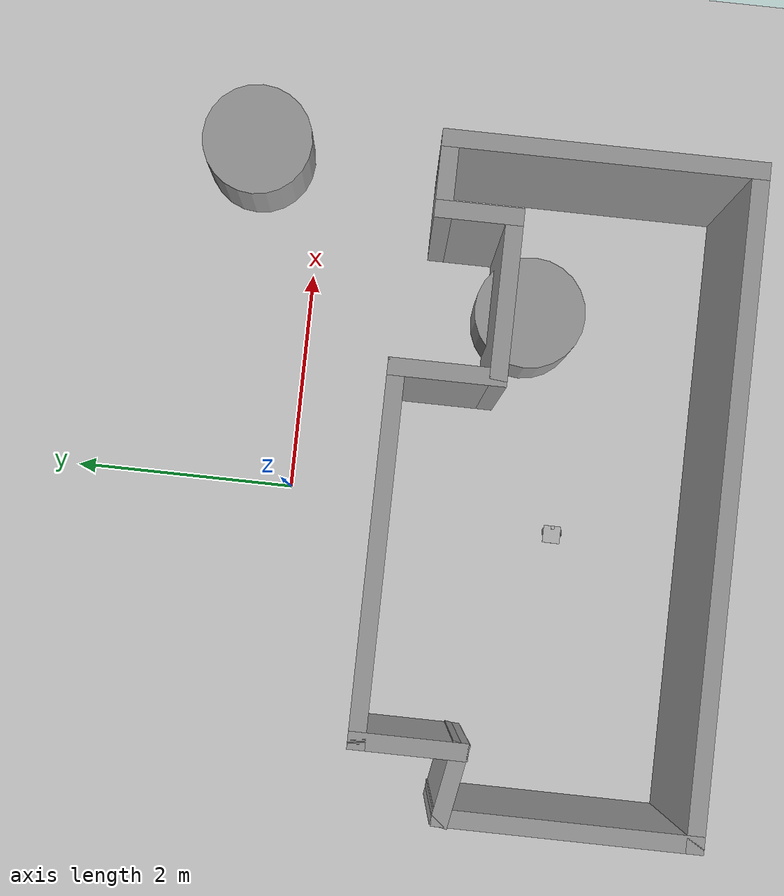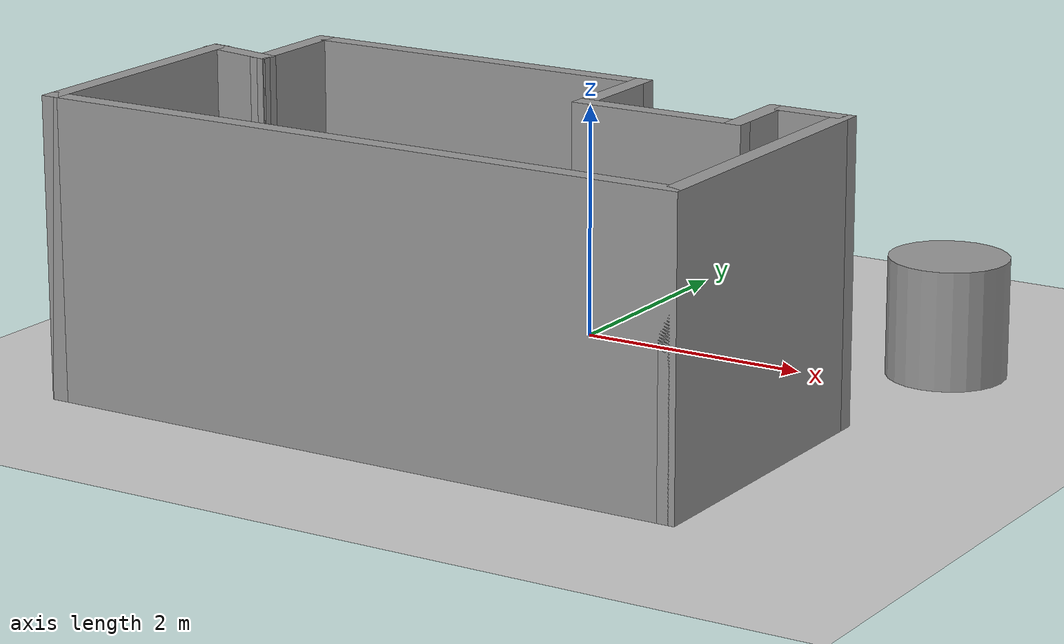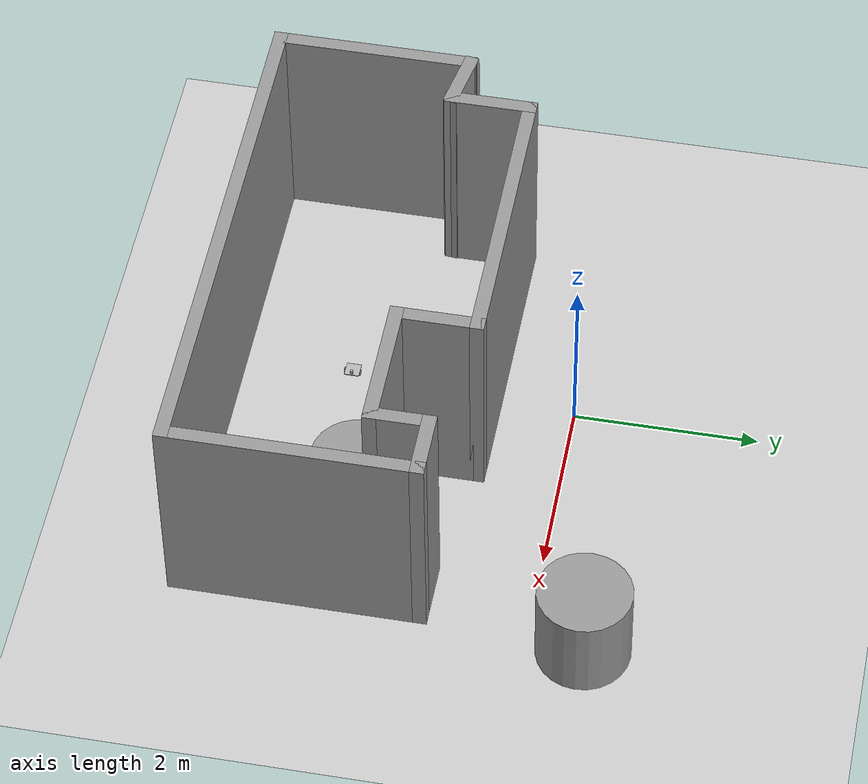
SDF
<sdf version="1.6">
 <world name="default">
  <light name="sun" type="directional">
   <pose>0 0 10 0 -0 0</pose>
   <diffuse>0.8 0.8 0.8 1</diffuse>
   <specular>0.1 0.1 0.1 1</specular>
   <attenuation>
    <range>1000</range>
    <constant>0.9</constant>
    <linear>0.01</linear>
    <quadratic>0.001</quadratic>
   </attenuation>
   <direction>-0.5 0.5 -1</direction>
  </light>
  <model name="ground_plane">
   <static>1</static>
   <link name="link">
    <collision name="collision">
     <geometry><plane><normal>0 0 1</normal><size>100 100</size></plane></geometry>
     <surface><friction><ode><mu>100</mu><mu2>50</mu2></ode></friction></surface>
    </collision>
    <visual name="visual">
     <cast_shadows>0</cast_shadows>
     <geometry><plane><normal>0 0 1</normal><size>100 100</size></plane></geometry>
     <material>
      <script><uri>file://media/materials/scripts/gazebo.material</uri><name>Gazebo/Grey</name></script>
     </material>
    </visual>
   </link>
  </model>
  <gravity>0 0 -9.8</gravity>
  <magnetic_field>6e-06 2.3e-05 -4.2e-05</magnetic_field>
  <atmosphere type="adiabatic"/>
  <physics name="default_physics" default="0" type="ode">
   <max_step_size>0.001</max_step_size>
   <real_time_factor>1</real_time_factor>
   <real_time_update_rate>1000</real_time_update_rate>
  </physics>
  <scene><ambient>0.4 0.4 0.4 1</ambient><background>0.7 0.7 0.7 1</background><shadows>1</shadows></scene>
  <spherical_coordinates>
   <surface_model>EARTH_WGS84</surface_model>
   <latitude_deg>0</latitude_deg>
   <longitude_deg>0</longitude_deg>
   <elevation>0</elevation>
   <heading_deg>0</heading_deg>
  </spherical_coordinates>
  <model name="ubot">
   <link name="base_footprint">
    <inertial>
     <pose>0.000644 0 0.020545 0 -0 0</pose>
     <mass>20.2</mass>
     <inertia>
      <ixx>0.030059</ixx>
      <ixy>0</ixy>
      <ixz>-0.000707921</ixz>
      <iyy>0.052134</iyy>
      <iyz>0</iyz>
      <izz>0.0222966</izz>
     </inertia>
    </inertial>
    <collision name="base_footprint_fixed_joint_lump__base_link_collision">
     <pose>0 0 0.04 0 -0 0</pose>
     <geometry><box><size>0.16 0.16 0.01</size></box></geometry>
    </collision>
    <collision name="base_footprint_fixed_joint_lump__sensor_laser_collision_1">
     <pose>0.065 0 0.075 0 -0 0</pose>
     <geometry><box><size>0.03 0.03 0.04</size></box></geometry>
    </collision>
    <visual name="base_footprint_visual"><geometry><box><size>0.001 0.001 0.001</size></box></geometry></visual>
    <visual name="base_footprint_fixed_joint_lump__base_link_visual_1">
     <pose>0 0 0.04 0 -0 0</pose>
     <geometry><box><size>0.16 0.16 0.01</size></box></geometry>
    </visual>
    <visual name="base_footprint_fixed_joint_lump__sensor_laser_visual_2">
     <pose>0.065 0 0.075 0 -0 0</pose>
     <geometry><box><size>0.03 0.03 0.04</size></box></geometry>
     <material><script><uri>__default__</uri><name>__default__</name></script></material>
    </visual>
    <sensor name="head_hokuyo_sensor" type="ray">
     <visualize>1</visualize>
     <update_rate>20</update_rate>
     <ray>
      <scan>
       <horizontal>
        <samples>1440</samples>
        <resolution>1</resolution>
        <min_angle>-3.14159</min_angle>
        <max_angle>3.14159</max_angle>
       </horizontal>
       <vertical><samples>1</samples><min_angle>0</min_angle><max_angle>0</max_angle></vertical>
      </scan>
      <range><min>0.1</min><max>30</max><resolution>0.01</resolution></range>
      <noise><type>gaussian</type><mean>0</mean><stddev>0.01</stddev></noise>
     </ray>
     <plugin name="gazebo_ros_head_hokuyo_controller" filename="libgazebo_ros_laser.so">
      <topicName>/ubot/laser_scan/scan</topicName>
      <frameName>sensor_laser</frameName>
      <robotNamespace>/</robotNamespace>
     </plugin>
     <pose>0.065 0 0.075 0 -0 0</pose>
    </sensor>
   </link>
   <link name="caster_wheel">
    <pose>-0.052 0 0.0175 0 -0 0</pose>
    <inertial>
     <mass>10</mass>
     <inertia>
      <ixx>0.001225</ixx>
      <ixy>0</ixy>
      <ixz>0</ixz>
      <iyy>0.001225</iyy>
      <iyz>0</iyz>
      <izz>0.001225</izz>
     </inertia>
    </inertial>
    <collision name="caster_wheel_collision">
     <geometry><sphere><radius>0.0175</radius></sphere></geometry>
    </collision>
    <visual name="caster_wheel_visual"><geometry><sphere><radius>0.0175</radius></sphere></geometry></visual>
   </link>
   <joint name="caster_wheel_joint" type="revolute">
    <child>caster_wheel</child>
    <parent>base_footprint</parent>
    <axis>
     <xyz>0 1 0</xyz>
     <limit><lower>-1e+16</lower><upper>1e+16</upper></limit>
     <dynamics><spring_reference>0</spring_reference><spring_stiffness>0</spring_stiffness></dynamics>
     <use_parent_model_frame>1</use_parent_model_frame>
    </axis>
   </joint>
   <link name="left_wheel">
    <pose>0.02 0.087 0.035 0 -0 0</pose>
    <inertial>
     <mass>10</mass>
     <inertia>
      <ixx>0.00308333</ixx>
      <ixy>0</ixy>
      <ixz>0</ixz>
      <iyy>0.00308333</iyy>
      <iyz>0</iyz>
      <izz>0.006125</izz>
     </inertia>
    </inertial>
    <collision name="left_wheel_collision">
     <pose>0 0 0 1.5708 -0 0</pose>
     <geometry><cylinder><length>0.005</length><radius>0.035</radius></cylinder></geometry>
    </collision>
    <visual name="left_wheel_visual">
     <pose>0 0 0 1.5708 -0 0</pose>
     <geometry><cylinder><length>0.005</length><radius>0.035</radius></cylinder></geometry>
    </visual>
   </link>
   <joint name="left_wheel_joint" type="revolute">
    <child>left_wheel</child>
    <parent>base_footprint</parent>
    <axis>
     <xyz>0 1 0</xyz>
     <limit><lower>-1e+16</lower><upper>1e+16</upper></limit>
     <dynamics><spring_reference>0</spring_reference><spring_stiffness>0</spring_stiffness></dynamics>
     <use_parent_model_frame>1</use_parent_model_frame>
    </axis>
   </joint>
   <link name="right_wheel">
    <pose>0.02 -0.087 0.035 0 -0 0</pose>
    <inertial>
     <mass>10</mass>
     <inertia>
      <ixx>0.00308333</ixx>
      <ixy>0</ixy>
      <ixz>0</ixz>
      <iyy>0.00308333</iyy>
      <iyz>0</iyz>
      <izz>0.006125</izz>
     </inertia>
    </inertial>
    <collision name="right_wheel_collision">
     <pose>0 0 0 1.5708 -0 0</pose>
     <geometry><cylinder><length>0.005</length><radius>0.035</radius></cylinder></geometry>
    </collision>
    <visual name="right_wheel_visual">
     <pose>0 0 0 1.5708 -0 0</pose>
     <geometry><cylinder><length>0.005</length><radius>0.035</radius></cylinder></geometry>
    </visual>
   </link>
   <joint name="right_wheel_joint" type="revolute">
    <child>right_wheel</child>
    <parent>base_footprint</parent>
    <axis>
     <xyz>0 1 0</xyz>
     <limit><lower>-1e+16</lower><upper>1e+16</upper></limit>
     <dynamics><spring_reference>0</spring_reference><spring_stiffness>0</spring_stiffness></dynamics>
     <use_parent_model_frame>1</use_parent_model_frame>
    </axis>
   </joint>
   <static>0</static>
   <plugin name="differential_drive_controller" filename="libgazebo_ros_diff_drive.so">
    <alwaysOn>false</alwaysOn>
    <legacyMode>false</legacyMode>
    <updateRate>20</updateRate>
    <leftJoint>left_wheel_joint</leftJoint>
    <rightJoint>right_wheel_joint</rightJoint>
    <wheelSeparation>0.15</wheelSeparation>
    <wheelDiameter>0.07</wheelDiameter>
    <torque>20</torque>
    <commandTopic>/ubot/base_controller/cmd_vel</commandTopic>
    <odometryTopic>/ubot/base_controller/odom</odometryTopic>
    <odometryFrame>odom</odometryFrame>
    <robotBaseFrame>base_footprint</robotBaseFrame>
    <robotNamespace>/</robotNamespace>
   </plugin>
   <pose>-0.187922 -2.48077 0 0 0 -0.009636</pose>
  </model>
  <model name="unit_cylinder">
   <pose>3.05366 0.597406 0.499992 -3e-06 -4e-06 -0</pose>
   <link name="link">
    <inertial>
     <mass>1</mass>
     <inertia><ixx>0.145833</ixx><ixy>0</ixy><ixz>0</ixz><iyy>0.145833</iyy><iyz>0</iyz><izz>0.125</izz></inertia>
    </inertial>
    <collision name="collision">
     <geometry><cylinder><radius>0.5</radius><length>1</length></cylinder></geometry>
    </collision>
    <visual name="visual">
     <geometry><cylinder><radius>0.5</radius><length>1</length></cylinder></geometry>
     <material>
      <script><name>Gazebo/Grey</name><uri>file://media/materials/scripts/gazebo.material</uri></script>
     </material>
    </visual>
   </link>
  </model>
  <model name="unit_cylinder_0">
   <pose>1.74626 -2.01285 0.499995 -2e-06 1e-06 1e-05</pose>
   <link name="link">
    <inertial>
     <mass>1</mass>
     <inertia><ixx>0.145833</ixx><ixy>0</ixy><ixz>0</ixz><iyy>0.145833</iyy><iyz>0</iyz><izz>0.125</izz></inertia>
    </inertial>
    <collision name="collision">
     <geometry><cylinder><radius>0.5</radius><length>1</length></cylinder></geometry>
    </collision>
    <visual name="visual">
     <geometry><cylinder><radius>0.5</radius><length>1</length></cylinder></geometry>
     <material>
      <script><name>Gazebo/Grey</name><uri>file://media/materials/scripts/gazebo.material</uri></script>
     </material>
    </visual>
   </link>
  </model>
  <model name="closed_room">
   <pose>0.136049 -2.30126 0 0 -0 0</pose>
   <link name="Wall_0">
    <collision name="Wall_0_Collision">
     <geometry><box><size>2.25 0.15 2.5</size></box></geometry>
     <pose>0 0 1.25 0 -0 0</pose>
    </collision>
    <visual name="Wall_0_Visual">
     <pose>0 0 1.25 0 -0 0</pose>
     <geometry><box><size>2.25 0.15 2.5</size></box></geometry>
     <material>
      <script><uri>file://media/materials/scripts/gazebo.material</uri><name>Gazebo/Grey</name></script>
      <ambient>1 1 1 1</ambient>
     </material>
     <meta><layer>0</layer></meta>
    </visual>
    <pose>-2.7939 -0.375 0 0 0 -1.5708</pose>
   </link>
   <link name="Wall_1">
    <collision name="Wall_1_Collision">
     <geometry><box><size>5.75 0.15 2.5</size></box></geometry>
     <pose>0 0 1.25 0 -0 0</pose>
    </collision>
    <visual name="Wall_1_Visual">
     <pose>0 0 1.25 0 -0 0</pose>
     <geometry><box><size>5.75 0.15 2.5</size></box></geometry>
     <material>
      <script><uri>file://media/materials/scripts/gazebo.material</uri><name>Gazebo/Grey</name></script>
      <ambient>1 1 1 1</ambient>
     </material>
     <meta><layer>0</layer></meta>
    </visual>
    <pose>0.006103 -1.425 0 0 -0 0</pose>
   </link>
   <link name="Wall_2">
    <collision name="Wall_2_Collision">
     <geometry><box><size>2.75 0.15 2.5</size></box></geometry>
     <pose>0 0 1.25 0 -0 0</pose>
    </collision>
    <visual name="Wall_2_Visual">
     <pose>0 0 1.25 0 -0 0</pose>
     <geometry><box><size>2.75 0.15 2.5</size></box></geometry>
     <material>
      <script><uri>file://media/materials/scripts/gazebo.material</uri><name>Gazebo/Grey</name></script>
      <ambient>1 1 1 1</ambient>
     </material>
     <meta><layer>0</layer></meta>
    </visual>
    <pose>2.8061 -0.125 0 0 -0 1.5708</pose>
   </link>
   <link name="Wall_3">
    <collision name="Wall_3_Collision">
     <geometry><box><size>0.75 0.15 2.5</size></box></geometry>
     <pose>0 0 1.25 0 -0 0</pose>
    </collision>
    <visual name="Wall_3_Visual">
     <pose>0 0 1.25 0 -0 0</pose>
     <geometry><box><size>0.75 0.15 2.5</size></box></geometry>
     <material>
      <script><uri>file://media/materials/scripts/gazebo.material</uri><name>Gazebo/Grey</name></script>
      <ambient>1 1 1 1</ambient>
     </material>
     <meta><layer>0</layer></meta>
    </visual>
    <pose>2.5061 1.175 0 0 -0 3.14159</pose>
   </link>
   <link name="Wall_4">
    <collision name="Wall_4_Collision">
     <geometry><box><size>0.75 0.15 2.5</size></box></geometry>
     <pose>0 0 1.25 0 -0 0</pose>
    </collision>
    <visual name="Wall_4_Visual">
     <pose>0 0 1.25 0 -0 0</pose>
     <geometry><box><size>0.75 0.15 2.5</size></box></geometry>
     <material>
      <script><uri>file://media/materials/scripts/gazebo.material</uri><name>Gazebo/Grey</name></script>
      <ambient>1 1 1 1</ambient>
     </material>
     <meta><layer>0</layer></meta>
    </visual>
    <pose>2.2061 0.875 0 0 0 -1.5708</pose>
   </link>
   <link name="Wall_5">
    <collision name="Wall_5_Collision">
     <geometry><box><size>1.5 0.15 2.5</size></box></geometry>
     <pose>0 0 1.25 0 -0 0</pose>
    </collision>
    <visual name="Wall_5_Visual">
     <pose>0 0 1.25 0 -0 0</pose>
     <geometry><box><size>1.5 0.15 2.5</size></box></geometry>
     <material>
      <script><uri>file://media/materials/scripts/gazebo.material</uri><name>Gazebo/Grey</name></script>
      <ambient>1 1 1 1</ambient>
     </material>
     <meta><layer>0</layer></meta>
    </visual>
    <pose>1.5311 0.575 0 0 -0 3.14159</pose>
   </link>
   <link name="Wall_6">
    <collision name="Wall_6_Collision">
     <geometry><box><size>1 0.15 2.5</size></box></geometry>
     <pose>0 0 1.25 0 -0 0</pose>
    </collision>
    <visual name="Wall_6_Visual">
     <pose>0 0 1.25 0 -0 0</pose>
     <geometry><box><size>1 0.15 2.5</size></box></geometry>
     <material>
      <script><uri>file://media/materials/scripts/gazebo.material</uri><name>Gazebo/Grey</name></script>
      <ambient>1 1 1 1</ambient>
     </material>
     <meta><layer>0</layer></meta>
    </visual>
    <pose>0.856103 1 0 0 -0 1.5708</pose>
   </link>
   <link name="Wall_7">
    <collision name="Wall_7_Collision">
     <geometry><box><size>3.25 0.15 2.5</size></box></geometry>
     <pose>0 0 1.25 0 -0 0</pose>
    </collision>
    <visual name="Wall_7_Visual">
     <pose>0 0 1.25 0 -0 0</pose>
     <geometry><box><size>3.25 0.15 2.5</size></box></geometry>
     <material>
      <script><uri>file://media/materials/scripts/gazebo.material</uri><name>Gazebo/Grey</name></script>
      <ambient>1 1 1 1</ambient>
     </material>
     <meta><layer>0</layer></meta>
    </visual>
    <pose>-0.693897 1.425 0 0 -0 3.14159</pose>
   </link>
   <link name="Wall_8">
    <collision name="Wall_8_Collision">
     <geometry><box><size>1 0.15 2.5</size></box></geometry>
     <pose>0 0 1.25 0 -0 0</pose>
    </collision>
    <visual name="Wall_8_Visual">
     <pose>0 0 1.25 0 -0 0</pose>
     <geometry><box><size>1 0.15 2.5</size></box></geometry>
     <material>
      <script><uri>file://media/materials/scripts/gazebo.material</uri><name>Gazebo/Grey</name></script>
      <ambient>1 1 1 1</ambient>
     </material>
     <meta><layer>0</layer></meta>
    </visual>
    <pose>-2.2439 1 0 0 0 -1.5708</pose>
   </link>
   <link name="Wall_9">
    <collision name="Wall_9_Collision">
     <geometry><box><size>0.709017 0.15 2.5</size></box></geometry>
     <pose>0 0 1.25 0 -0 0</pose>
    </collision>
    <visual name="Wall_9_Visual">
     <pose>0 0 1.25 0 -0 0</pose>
     <geometry><box><size>0.709017 0.15 2.5</size></box></geometry>
     <material>
      <script><uri>file://media/materials/scripts/gazebo.material</uri><name>Gazebo/Grey</name></script>
      <ambient>1 1 1 1</ambient>
     </material>
     <meta><layer>0</layer></meta>
    </visual>
    <pose>-2.5189 0.625 0 0 -0 2.96174</pose>
   </link>
   <static>1</static>
  </model>
 </world>
</sdf>
